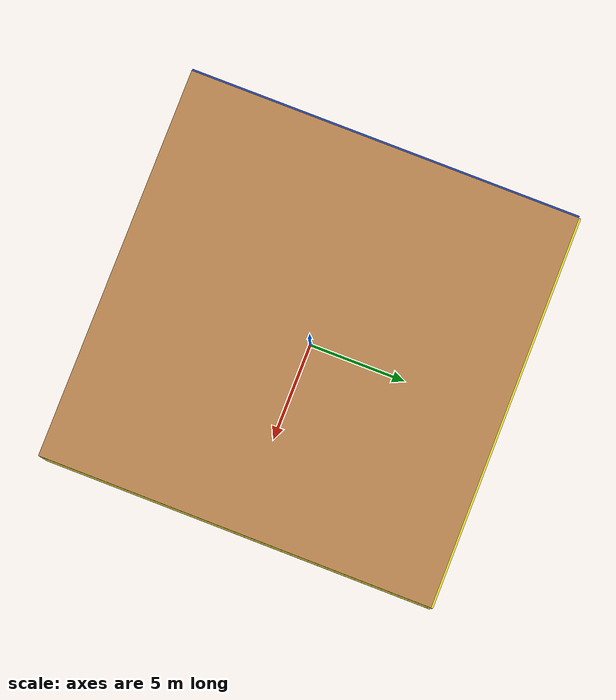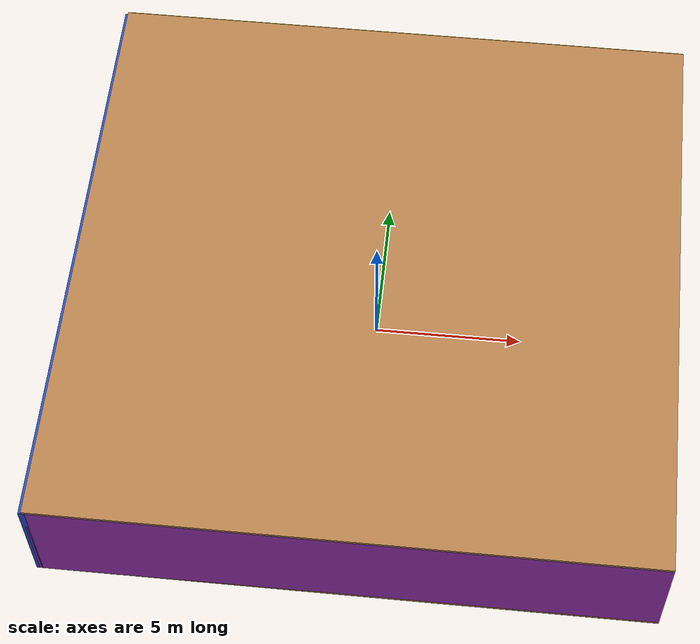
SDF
<sdf version="1.4">
 <world name="default">
  <physics type="ode">
   <max_step_size>0.001</max_step_size>
   <real_time_factor>1</real_time_factor>
   <real_time_update_rate>1000</real_time_update_rate>
   <gravity>0 0 -9.8</gravity>
  </physics>
  <scene><ambient>0.4 0.4 0.4 1</ambient><background>0.7 0.7 0.7 1</background><shadows>1</shadows></scene>
  <model name="Surrounding">
   <static>1</static>
   <link name="Ceiling">
    <collision name="Ceiling_Collision"><geometry><box><size>20 20 0.1</size></box></geometry></collision>
    <visual name="Ceiling_Visual">
     <geometry><box><size>20 20 0.1</size></box></geometry>
     <material>
      <script><uri>file://media/materials/scripts/gazebo.material</uri><name>Gazebo/WoodFloor</name></script>
     </material>
    </visual>
    <pose>0 0 4.05 0 0 0</pose>
   </link>
   <link name="Wall_South">
    <collision name="Wall_South_Collision">
     <geometry><box><size>20 0 4</size></box></geometry>
     <pose>0 0 2 0 -0 0</pose>
    </collision>
    <visual name="Wall_South_Visual">
     <pose>0 0 2 0 -0 0</pose>
     <geometry><box><size>20 0 4</size></box></geometry>
     <material>
      <script><uri>file://media/materials/scripts/gazebo.material</uri><name>Gazebo/PurpleGlow</name></script>
     </material>
    </visual>
    <velocity_decay><linear>0</linear><angular>0</angular></velocity_decay>
    <pose>0 -10 0 0 -0 0</pose>
   </link>
   <link name="Wall_East">
    <collision name="Wall_21_Collision">
     <geometry><box><size>20 0 4</size></box></geometry>
     <pose>0 0 2 0 -0 0</pose>
    </collision>
    <visual name="Wall_21_Visual">
     <pose>0 0 2 0 -0 0</pose>
     <geometry><box><size>20 0 4</size></box></geometry>
     <material>
      <script><uri>file://media/materials/scripts/gazebo.material</uri><name>Gazebo/Yellow</name></script>
     </material>
    </visual>
    <velocity_decay><linear>0</linear><angular>0</angular></velocity_decay>
    <pose>10 0 0 0 -0 1.5708</pose>
   </link>
   <link name="Wall_North">
    <collision name="Wall_22_Collision">
     <geometry><box><size>20 0.2 4</size></box></geometry>
     <pose>0 0 2 0 -0 0</pose>
    </collision>
    <visual name="Wall_22_Visual">
     <pose>0 0 2 0 -0 0</pose>
     <geometry><box><size>20 0.2 4</size></box></geometry>
     <material>
      <script><uri>file://media/materials/scripts/gazebo.material</uri><name>Gazebo/YellowGlow</name></script>
     </material>
    </visual>
    <velocity_decay><linear>0</linear><angular>0</angular></velocity_decay>
    <pose>0 10 0 0 -0 0</pose>
   </link>
   <link name="Wall_West">
    <collision name="Wall_23_Collision">
     <geometry><box><size>20 0.2 4</size></box></geometry>
     <pose>0 0 2 0 -0 0</pose>
    </collision>
    <visual name="Wall_23_Visual">
     <pose>0 0 2 0 -0 0</pose>
     <geometry><box><size>20 0.2 4</size></box></geometry>
     <material>
      <script><uri>file://media/materials/scripts/gazebo.material</uri><name>Gazebo/Blue</name></script>
     </material>
    </visual>
    <velocity_decay><linear>0</linear><angular>0</angular></velocity_decay>
    <pose>-10 0 0 0 0 -1.5708</pose>
   </link>
   <link name="Ground_link">
    <collision name="collision">
     <pose>0 0 .05 0 -0 0</pose>
     <geometry><box><size>20 20 0.1</size></box></geometry>
    </collision>
    <visual name="visual">
     <pose>0 0 .05 0 -0 0</pose>
     <geometry><box><size>20 20 0.1</size></box></geometry>
     <material>
      <script>
       <uri>file://media/materials/scripts/gazebo.material</uri>
       <name>Gazebo/YellowTransparent</name>
      </script>
     </material>
    </visual>
   </link>
   <static>1</static>
  </model>
  <spherical_coordinates>
   <surface_model>EARTH_WGS84</surface_model>
   <latitude_deg>0</latitude_deg>
   <longitude_deg>0</longitude_deg>
   <elevation>0</elevation>
   <heading_deg>0</heading_deg>
  </spherical_coordinates>
  <light name="lightball_0" type="diffuse">
   <diffuse>0.8 0.8 0.8 1</diffuse>
   <specular>0.2 0.2 0.2 1</specular>
   <attenuation>
    <range>100</range>
    <constant>0.7</constant>
    <linear>0.01</linear>
    <quadratic>0.001</quadratic>
   </attenuation>
   <direction>-0.5 0.1 -0.9</direction>
   <pose>7.28693954217 8.42628848088 3.69511987124 0 0 0</pose>
  </light>
  <light name="lightball_1" type="diffuse">
   <diffuse>0.8 0.8 0.8 1</diffuse>
   <specular>0.2 0.2 0.2 1</specular>
   <attenuation>
    <range>100</range>
    <constant>0.7</constant>
    <linear>0.01</linear>
    <quadratic>0.001</quadratic>
   </attenuation>
   <direction>-0.5 0.1 -0.9</direction>
   <pose>-8.93867870315 2.43288234093 1.561662479 0 0 0</pose>
  </light>
  <light name="lightball_2" type="diffuse">
   <diffuse>0.8 0.8 0.8 1</diffuse>
   <specular>0.2 0.2 0.2 1</specular>
   <attenuation>
    <range>100</range>
    <constant>0.7</constant>
    <linear>0.01</linear>
    <quadratic>0.001</quadratic>
   </attenuation>
   <direction>-0.5 0.1 -0.9</direction>
   <pose>6.74064538108 4.93948776307 1.39105178055 0 0 0</pose>
  </light>
  <light name="lightball_3" type="diffuse">
   <diffuse>0.8 0.8 0.8 1</diffuse>
   <specular>0.2 0.2 0.2 1</specular>
   <attenuation>
    <range>100</range>
    <constant>0.7</constant>
    <linear>0.01</linear>
    <quadratic>0.001</quadratic>
   </attenuation>
   <direction>-0.5 0.1 -0.9</direction>
   <pose>2.11972595537 6.81612577506 2.77425093367 0 0 0</pose>
  </light>
  <light name="lightball_4" type="diffuse">
   <diffuse>0.8 0.8 0.8 1</diffuse>
   <specular>0.2 0.2 0.2 1</specular>
   <attenuation>
    <range>100</range>
    <constant>0.7</constant>
    <linear>0.01</linear>
    <quadratic>0.001</quadratic>
   </attenuation>
   <direction>-0.5 0.1 -0.9</direction>
   <pose>5.19034466923 -1.42686621528 3.82585157407 0 0 0</pose>
  </light>
  <light name="lightball_5" type="diffuse">
   <diffuse>0.8 0.8 0.8 1</diffuse>
   <specular>0.2 0.2 0.2 1</specular>
   <attenuation>
    <range>100</range>
    <constant>0.7</constant>
    <linear>0.01</linear>
    <quadratic>0.001</quadratic>
   </attenuation>
   <direction>-0.5 0.1 -0.9</direction>
   <pose>9.67770140692 -5.48486165381 3.55969700099 0 0 0</pose>
  </light>
  <light name="lightball_6" type="diffuse">
   <diffuse>0.8 0.8 0.8 1</diffuse>
   <specular>0.2 0.2 0.2 1</specular>
   <attenuation>
    <range>100</range>
    <constant>0.7</constant>
    <linear>0.01</linear>
    <quadratic>0.001</quadratic>
   </attenuation>
   <direction>-0.5 0.1 -0.9</direction>
   <pose>2.6916466967 -7.26986308625 1.72118512437 0 0 0</pose>
  </light>
  <light name="lightball_7" type="diffuse">
   <diffuse>0.8 0.8 0.8 1</diffuse>
   <specular>0.2 0.2 0.2 1</specular>
   <attenuation>
    <range>100</range>
    <constant>0.7</constant>
    <linear>0.01</linear>
    <quadratic>0.001</quadratic>
   </attenuation>
   <direction>-0.5 0.1 -0.9</direction>
   <pose>-2.80909328117 -9.07480045317 0.973276792323 0 0 0</pose>
  </light>
  <light name="lightball_8" type="diffuse">
   <diffuse>0.8 0.8 0.8 1</diffuse>
   <specular>0.2 0.2 0.2 1</specular>
   <attenuation>
    <range>100</range>
    <constant>0.7</constant>
    <linear>0.01</linear>
    <quadratic>0.001</quadratic>
   </attenuation>
   <direction>-0.5 0.1 -0.9</direction>
   <pose>0.673958905484 4.67834498971 3.24248677908 0 0 0</pose>
  </light>
  <light name="lightball_9" type="diffuse">
   <diffuse>0.8 0.8 0.8 1</diffuse>
   <specular>0.2 0.2 0.2 1</specular>
   <attenuation>
    <range>100</range>
    <constant>0.7</constant>
    <linear>0.01</linear>
    <quadratic>0.001</quadratic>
   </attenuation>
   <direction>-0.5 0.1 -0.9</direction>
   <pose>-7.63866077811 8.31471085881 2.85617408657 0 0 0</pose>
  </light>
  <light name="lightball_10" type="diffuse">
   <diffuse>0.8 0.8 0.8 1</diffuse>
   <specular>0.2 0.2 0.2 1</specular>
   <attenuation>
    <range>100</range>
    <constant>0.7</constant>
    <linear>0.01</linear>
    <quadratic>0.001</quadratic>
   </attenuation>
   <direction>-0.5 0.1 -0.9</direction>
   <pose>7.68679846984 3.85862744249 1.9210720733 0 0 0</pose>
  </light>
  <light name="lightball_11" type="diffuse">
   <diffuse>0.8 0.8 0.8 1</diffuse>
   <specular>0.2 0.2 0.2 1</specular>
   <attenuation>
    <range>100</range>
    <constant>0.7</constant>
    <linear>0.01</linear>
    <quadratic>0.001</quadratic>
   </attenuation>
   <direction>-0.5 0.1 -0.9</direction>
   <pose>-8.30938569245 -0.350790193627 1.7120999986 0 0 0</pose>
  </light>
  <light name="lightball_12" type="diffuse">
   <diffuse>0.8 0.8 0.8 1</diffuse>
   <specular>0.2 0.2 0.2 1</specular>
   <attenuation>
    <range>100</range>
    <constant>0.7</constant>
    <linear>0.01</linear>
    <quadratic>0.001</quadratic>
   </attenuation>
   <direction>-0.5 0.1 -0.9</direction>
   <pose>9.24112577949 -3.19169063615 1.67483632467 0 0 0</pose>
  </light>
  <light name="lightball_13" type="diffuse">
   <diffuse>0.8 0.8 0.8 1</diffuse>
   <specular>0.2 0.2 0.2 1</specular>
   <attenuation>
    <range>100</range>
    <constant>0.7</constant>
    <linear>0.01</linear>
    <quadratic>0.001</quadratic>
   </attenuation>
   <direction>-0.5 0.1 -0.9</direction>
   <pose>-6.90874130744 4.08269964386 2.22692004009 0 0 0</pose>
  </light>
  <include>
   <uri>model://textured_shapes</uri>
   <pose>-5.54791069719 5.59815880241 0 0 0 2.39253003418</pose>
  </include>
  <include>
   <uri>model://construction_cone</uri>
   <pose>-1.60352556124 -7.3042951327 0 0 0 3.05308302779</pose>
  </include>
  <include>
   <uri>model://textured_shapes</uri>
   <pose>-1.48353007186 2.5927862769 0 0 0 2.99797583958</pose>
  </include>
  <include><uri>model://cabinet</uri><pose>0.449206287036 -8.62778078123 0 0 0 2.60232289878</pose></include>
  <include>
   <uri>model://textured_shapes</uri>
   <pose>3.35416352445 -3.82042033409 0 0 0 0.41220260239</pose>
  </include>
  <include>
   <uri>model://robocup_3Dsim_goal</uri>
   <pose>8.61197103651 -0.625860418154 0 0 0 2.99916808202</pose>
  </include>
 </world>
</sdf>

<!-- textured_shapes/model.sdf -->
<sdf version="1.6">
  <model name="textured_shapes">
    <pose>0 0 0.5 0 0 0</pose>
    <link name="box">
      <pose>0 -1.5 0 0 0 0</pose>
      <collision name="collision">
        <geometry>
          <box>
            <size>1 1 1</size>
          </box>
        </geometry>
      </collision>
      <visual name="visual">
        <geometry>
          <box>
            <size>1 1 1</size>
          </box>
        </geometry>
        <material>
          <script>
            <uri>model://../model_source/models/textured_shapes/materials/scripts</uri>
            <uri>model://../model_source/models/textured_shapes/materials/textures</uri>
            <name>TexturedShape/Squares</name>
          </script>
        </material>
      </visual>
    </link>
    <link name="sphere">
      <collision name="collision">
        <geometry>
          <sphere>
            <radius>0.5</radius>
          </sphere>
        </geometry>
      </collision>
      <visual name="visual">
        <geometry>
          <sphere>
            <radius>0.5</radius>
          </sphere>
        </geometry>
        <material>
          <script>
            <uri>model://../model_source/models/textured_shapes/materials/scripts</uri>
            <uri>model://../model_source/models/textured_shapes/materials/textures</uri>
            <name>TexturedShape/Squares</name>
          </script>
        </material>
      </visual>
    </link>
    <link name="cylinder">
      <pose>0 1.5 0 0 0 0</pose>
      <collision name="collision">
        <geometry>
          <cylinder>
            <radius>0.5</radius>
            <length>1</length>
          </cylinder>
        </geometry>
      </collision>
      <visual name="visual">
        <geometry>
          <cylinder>
            <radius>0.5</radius>
            <length>1</length>
          </cylinder>
        </geometry>
        <material>
          <script>
            <uri>model://../model_source/models/textured_shapes/materials/scripts</uri>
            <uri>model://../model_source/models/textured_shapes/materials/textures</uri>
            <name>TexturedShape/Squares</name>
          </script>
        </material>
      </visual>
    </link>
  </model>
</sdf>

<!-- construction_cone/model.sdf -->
<sdf version="1.5">
  <model name="Construction Cone">
    <link name="link">
      <collision name="collision">
        <geometry>
          <mesh>
            <scale>10 10 10</scale>
            <uri>file://isr-testbed/construction_cone/meshes/construction_cone.dae</uri>
          </mesh>
        </geometry>
      </collision>
      <visual name="visual">
        <geometry>
          <mesh>
            <scale>10 10 10</scale>
            <uri>file://isr-testbed/construction_cone/meshes/construction_cone.dae</uri>
          </mesh>
        </geometry>
      </visual>
    </link>
  </model>
</sdf>

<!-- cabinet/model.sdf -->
<sdf version="1.5">
  <model name="cabinet">
    <static>true</static>
    <link name="cabinet_bottom_plate">
      <inertial>
        <pose>0 0 -1 0 0 0</pose>
        <inertia>
          <ixx>2.050000</ixx>
          <ixy>0</ixy>
          <ixz>0</ixz>
          <iyy>2.050000</iyy>
          <iyz>0</iyz>
          <izz>2.050000</izz>
        </inertia>
        <mass>25.000000</mass>
      </inertial>
      <collision name="cabinet_bottom_plate_geom">
        <pose>0 0 0.010000 0 0 0</pose>
        <geometry>
          <box>
            <size>0.450000 0.450000 0.020000</size>
          </box>
        </geometry>
      </collision>
      <visual name="cabinet_bottom_plate_geom_visual">
        <pose>0 0 0.010000 0 0 0</pose>
        <geometry>
          <box>
            <size>0.450000 0.450000 0.020000</size>
          </box>
        </geometry>
        <material>
          <script>
            <uri>model://media/materials/scripts/gazebo.material</uri>
            <name>Gazebo/Wood</name>
          </script>
        </material>
      </visual>
      <collision name="cabinet_bottom_plate_geom_cabinet_back_plate">
        <pose>0.235000 0 0.510000 0 0 0</pose>
        <geometry>
          <box>
            <size>0.020000 0.450000 1.020000</size>
          </box>
        </geometry>
      </collision>
      <visual name="cabinet_bottom_plate_geom_cabinet_back_plate_visual">
        <pose>0.235000 0 0.510000 0 0 0</pose>
        <geometry>
          <box>
            <size>0.020000 0.450000 1.020000</size>
          </box>
        </geometry>
        <material>
          <script>
            <uri>model://media/materials/scripts/gazebo.material</uri>
            <name>Gazebo/Wood</name>
          </script>
        </material>
      </visual>
      <collision name="cabinet_bottom_plate_geom_cabinet_left_plate">
        <pose>0 0.235000 0.510000 0 0 0</pose>
        <geometry>
          <box>
            <size>0.450000 0.020000 1.020000</size>
          </box>
        </geometry>
      </collision>
      <visual name="cabinet_bottom_plate_geom_cabinet_left_plate_visual">
        <pose>0 0.235000 0.510000 0 0 0</pose>
        <geometry>
          <box>
            <size>0.450000 0.020000 1.020000</size>
          </box>
        </geometry>
        <material>
          <script>
            <uri>model://media/materials/scripts/gazebo.material</uri>
            <name>Gazebo/Wood</name>
          </script>
        </material>
      </visual>
      <collision name="cabinet_bottom_plate_geom_cabinet_middle_plate">
        <pose>0 0 0.510000 0 0 0</pose>
        <geometry>
          <box>
            <size>0.450000 0.450000 0.020000</size>
          </box>
        </geometry>
      </collision>
      <visual name="cabinet_bottom_plate_geom_cabinet_middle_plate_visual">
        <pose>0 0 0.510000 0 0 0</pose>
        <geometry>
          <box>
            <size>0.450000 0.450000 0.020000</size>
          </box>
        </geometry>
        <material>
          <script>
            <uri>model://media/materials/scripts/gazebo.material</uri>
            <name>Gazebo/Wood</name>
          </script>
        </material>
      </visual>
      <collision name="cabinet_bottom_plate_geom_cabinet_right_plate">
        <pose>0 -0.235000 0.510000 0 0 0</pose>
        <geometry>
          <box>
            <size>0.450000 0.020000 1.020000</size>
          </box>
        </geometry>
      </collision>
      <visual name="cabinet_bottom_plate_geom_cabinet_right_plate_visual">
        <pose>0 -0.235000 0.510000 0 0 0</pose>
        <geometry>
          <box>
            <size>0.450000 0.020000 1.020000</size>
          </box>
        </geometry>
        <material>
          <script>
            <uri>model://media/materials/scripts/gazebo.material</uri>
            <name>Gazebo/Wood</name>
          </script>
        </material>
      </visual>
      <collision name="cabinet_bottom_plate_geom_cabinet_top_plate">
        <pose>0 0 1.010000 0 0 0</pose>
        <geometry>
          <box>
            <size>0.450000 0.450000 0.020000</size>
          </box>
        </geometry>
      </collision>
      <visual name="cabinet_bottom_plate_geom_cabinet_top_plate_visual">
        <pose>0 0 1.010000 0 0 0</pose>
        <geometry>
          <box>
            <size>0.450000 0.450000 0.020000</size>
          </box>
        </geometry>
        <material>
          <script>
            <uri>model://media/materials/scripts/gazebo.material</uri>
            <name>Gazebo/Wood</name>
          </script>
        </material>
      </visual>
    </link>
  </model>
</sdf>

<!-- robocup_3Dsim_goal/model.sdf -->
<sdf version="1.5">
  <model name="robocup_3d_goal">
    <static>true</static>
    <link name="left_post">
      <pose>0 1.05 0.45 0 0 0</pose>
      <collision name="collision">
        <geometry>
          <cylinder>
            <radius>0.05</radius>
            <length>0.9</length>
          </cylinder>
        </geometry>
      </collision>
      <visual name="visual">
        <geometry>
          <cylinder>
            <radius>0.05</radius>
            <length>0.9</length>
          </cylinder>
        </geometry>
        <material>
          <script>
            <uri>file://media/materials/scripts/gazebo.material</uri>
            <name>Gazebo/ZincYellow</name>
          </script>
        </material>
      </visual>
    </link>
    <link name="left_support_horiz_lower">
      <pose>0.30 1.05 0.01 0 0 0</pose>
      <collision name="collision">
        <geometry>
          <box>
            <size>0.50 0.02 0.02</size>
          </box>
        </geometry>
      </collision>
      <visual name="visual">
        <geometry>
          <box>
            <size>0.50 0.02 0.02</size>
          </box>
        </geometry>
        <material>
          <script>
            <uri>file://media/materials/scripts/gazebo.material</uri>
            <name>Gazebo/White</name>
          </script>
        </material>
      </visual>
    </link>
    <link name="left_support_horiz_upper">
      <pose>0.30 1.05 0.79 0 0 0</pose>
      <collision name="collision">
        <geometry>
          <box>
            <size>0.50 0.02 0.02</size>
          </box>
        </geometry>
      </collision>
      <visual name="visual">
        <geometry>
          <box>
            <size>0.50 0.02 0.02</size>
          </box>
        </geometry>
        <material>
          <script>
            <uri>file://media/materials/scripts/gazebo.material</uri>
            <name>Gazebo/White</name>
          </script>
        </material>
      </visual>
    </link>
    <link name="left_support_vertical">
      <pose>0.56 1.05 0.4 0 1.5708 0</pose>
      <collision name="collision">
        <geometry>
          <box>
            <size>0.80 0.02 0.02</size>
          </box>
        </geometry>
      </collision>
      <visual name="visual">
        <geometry>
          <box>
            <size>0.80 0.02 0.02</size>
          </box>
        </geometry>
        <material>
          <script>
            <uri>file://media/materials/scripts/gazebo.material</uri>
            <name>Gazebo/White</name>
          </script>
        </material>
      </visual>
    </link>
    <link name="right_support_horiz_lower">
      <pose>0.30 -1.05 0.01 0 0 0</pose>
      <collision name="collision">
        <geometry>
          <box>
            <size>0.50 0.02 0.02</size>
          </box>
        </geometry>
      </collision>
      <visual name="visual">
        <geometry>
          <box>
            <size>0.50 0.02 0.02</size>
          </box>
        </geometry>
        <material>
          <script>
            <uri>file://media/materials/scripts/gazebo.material</uri>
            <name>Gazebo/White</name>
          </script>
        </material>
      </visual>
    </link>
    <link name="right_support_horiz_upper">
      <pose>0.30 -1.05 0.79 0 0 0</pose>
      <collision name="collision">
        <geometry>
          <box>
            <size>0.50 0.02 0.02</size>
          </box>
        </geometry>
      </collision>
      <visual name="visual">
        <geometry>
          <box>
            <size>0.50 0.02 0.02</size>
          </box>
        </geometry>
        <material>
          <script>
            <uri>file://media/materials/scripts/gazebo.material</uri>
            <name>Gazebo/White</name>
          </script>
        </material>
      </visual>
    </link>
    <link name="right_support_vertical">
      <pose>0.56 -1.05 0.4 0 1.5708 0</pose>
      <collision name="collision">
        <geometry>
          <box>
            <size>0.80 0.02 0.02</size>
          </box>
        </geometry>
      </collision>
      <visual name="visual">
        <geometry>
          <box>
            <size>0.80 0.02 0.02</size>
          </box>
        </geometry>
        <material>
          <script>
            <uri>file://media/materials/scripts/gazebo.material</uri>
            <name>Gazebo/White</name>
          </script>
        </material>
      </visual>
    </link>
    <link name="center_support_horiz_lower">
      <pose>0.56 0 0.01 0 1.5708 0</pose>
      <collision name="collision">
        <geometry>
          <box>
            <size>0.02 2.08 0.02</size>
          </box>
        </geometry>
      </collision>
      <visual name="visual">
        <geometry>
          <box>
            <size>0.02 2.08 0.02</size>
          </box>
        </geometry>
        <material>
          <script>
            <uri>file://media/materials/scripts/gazebo.material</uri>
            <name>Gazebo/White</name>
          </script>
        </material>
      </visual>
    </link>
    <link name="center_support_horiz_upper">
      <pose>0.56 0 0.79 0 1.5708 0</pose>
      <collision name="collision">
        <geometry>
          <box>
            <size>0.02 2.08 0.02</size>
          </box>
        </geometry>
      </collision>
      <visual name="visual">
        <geometry>
          <box>
            <size>0.02 2.08 0.02</size>
          </box>
        </geometry>
        <material>
          <script>
            <uri>file://media/materials/scripts/gazebo.material</uri>
            <name>Gazebo/White</name>
          </script>
        </material>
      </visual>
    </link>
    <link name="right_post">
      <pose>0 -1.05 0.45 0 0 0</pose>
      <collision name="collision">
        <geometry>
          <cylinder>
            <radius>0.05</radius>
            <length>0.9</length>
          </cylinder>
        </geometry>
      </collision>
      <visual name="visual">
        <geometry>
          <cylinder>
            <radius>0.05</radius>
            <length>0.9</length>
          </cylinder>
        </geometry>
        <material>
          <script>
            <uri>file://media/materials/scripts/gazebo.material</uri>
            <name>Gazebo/ZincYellow</name>
          </script>
        </material>
      </visual>
    </link>
    <link name="crossbar">
      <pose>0 0 0.85 1.57 1.57 0</pose>
      <collision name="collision">
        <geometry>
          <cylinder>
            <radius>0.05</radius>
            <length>2.0</length>
          </cylinder>
        </geometry>
      </collision>
      <visual name="visual">
        <geometry>
          <cylinder>
            <radius>0.05</radius>
            <length>2.0</length>
          </cylinder>
        </geometry>
        <material>
          <script>
            <uri>file://media/materials/scripts/gazebo.material</uri>
            <name>Gazebo/ZincYellow</name>
          </script>
        </material>
      </visual>
    </link>
    <link name="center_net">
      <pose>0.56 0 0.40 0 0 0</pose>
      <collision name="collision">
        <geometry>
          <box>
            <size>0.01 2.1 0.80</size>
          </box>
        </geometry>
      </collision>
      <visual name="visual">
        <geometry>
          <box>
            <size>0.01 2.1 0.80</size>
          </box>
        </geometry>
        <material>
          <script>
            <uri>model://../model_source/models/robocup09_spl_field/materials/scripts/</uri>
            <uri>model://../model_source/models/robocup09_spl_field/materials/textures/</uri>
            <name>RoboCup/Net</name>
          </script>
        </material>
      </visual>
    </link>
    <link name="left_net">
      <pose>0.30 1.05 0.40 0 0 0</pose>
      <collision name="collision">
        <geometry>
          <box>
            <size>0.50 0.01 0.76</size>
          </box>
        </geometry>
      </collision>
      <visual name="visual">
        <geometry>
          <box>
            <size>0.50 0.01 0.76</size>
          </box>
        </geometry>
        <material>
          <script>
            <uri>model://../model_source/models/robocup09_spl_field/materials/scripts/</uri>
            <uri>model://../model_source/models/robocup09_spl_field/materials/textures/</uri>
            <name>RoboCup/Net</name>
          </script>
        </material>
      </visual>
    </link>
    <link name="right_net">
      <pose>0.30 -1.05 0.40 0 0 0</pose>
      <collision name="collision">
        <geometry>
          <box>
            <size>0.50 0.01 0.76</size>
          </box>
        </geometry>
      </collision>
      <visual name="visual">
        <geometry>
          <box>
            <size>0.50 0.01 0.76</size>
          </box>
        </geometry>
        <material>
          <script>
            <uri>model://../model_source/models/robocup09_spl_field/materials/scripts/</uri>
            <uri>model://../model_source/models/robocup09_spl_field/materials/textures/</uri>
            <name>RoboCup/Net</name>
          </script>
        </material>
      </visual>
    </link>
  </model>
</sdf>
